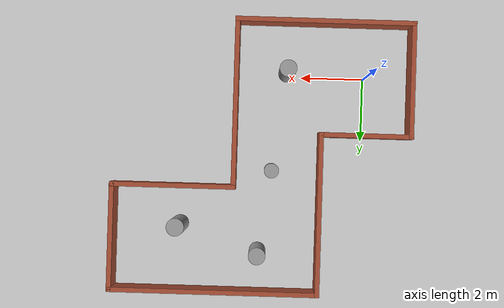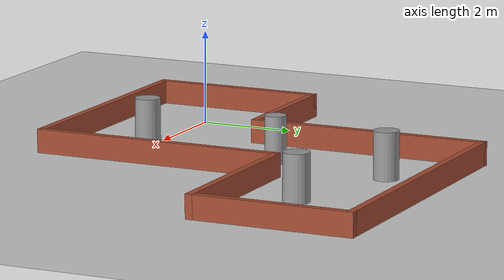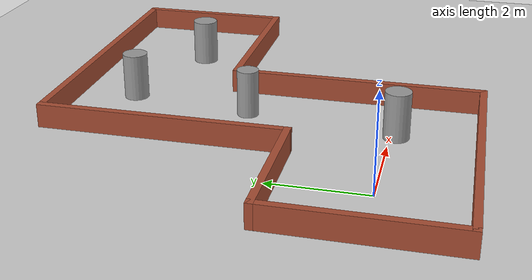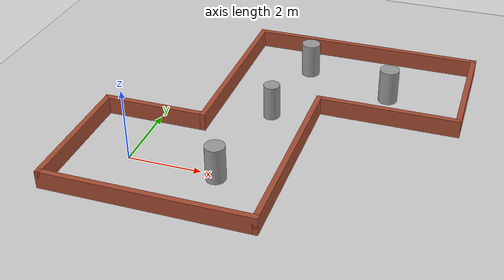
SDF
<sdf version="1.7">
 <world name="default">
  <light name="sun" type="directional">
   <pose>0 0 10 0 -0 0</pose>
   <diffuse>0.8 0.8 0.8 1</diffuse>
   <specular>0.2 0.2 0.2 1</specular>
   <attenuation>
    <range>1000</range>
    <constant>0.9</constant>
    <linear>0.01</linear>
    <quadratic>0.001</quadratic>
   </attenuation>
   <direction>-0.5 0.1 -0.9</direction>
   <spot><inner_angle>0</inner_angle><outer_angle>0</outer_angle><falloff>0</falloff></spot>
  </light>
  <model name="ground_plane">
   <static>1</static>
   <link name="link">
    <collision name="collision">
     <geometry><plane><normal>0 0 1</normal><size>100 100</size></plane></geometry>
     <surface>
      <contact><collide_bitmask>65535</collide_bitmask></contact>
      <friction><ode><mu>100</mu><mu2>50</mu2></ode></friction>
     </surface>
    </collision>
    <visual name="visual">
     <cast_shadows>0</cast_shadows>
     <geometry><plane><normal>0 0 1</normal><size>100 100</size></plane></geometry>
     <material>
      <script><uri>file://media/materials/scripts/gazebo.material</uri><name>Gazebo/Grey</name></script>
     </material>
    </visual>
   </link>
  </model>
  <gravity>0 0 -9.8</gravity>
  <magnetic_field>6e-06 2.3e-05 -4.2e-05</magnetic_field>
  <atmosphere type="adiabatic"/>
  <physics type="ode">
   <max_step_size>0.001</max_step_size>
   <real_time_factor>1</real_time_factor>
   <real_time_update_rate>1000</real_time_update_rate>
  </physics>
  <scene><ambient>0.4 0.4 0.4 1</ambient><background>0.7 0.7 0.7 1</background><shadows>1</shadows></scene>
  <spherical_coordinates>
   <surface_model>EARTH_WGS84</surface_model>
   <latitude_deg>0</latitude_deg>
   <longitude_deg>0</longitude_deg>
   <elevation>0</elevation>
   <heading_deg>0</heading_deg>
  </spherical_coordinates>
  <model name="slam_simple">
   <pose>3.20733 2.59271 0 0 -0 0</pose>
   <link name="Wall_10">
    <collision name="Wall_10_Collision">
     <geometry><box><size>3.5 0.15 0.5</size></box></geometry>
     <pose>0 0 0.25 0 -0 0</pose>
    </collision>
    <visual name="Wall_10_Visual">
     <pose>0 0 0.25 0 -0 0</pose>
     <geometry><box><size>3.5 0.15 0.5</size></box></geometry>
     <material>
      <script><uri>file://media/materials/scripts/gazebo.material</uri><name>Gazebo/Bricks</name></script>
      <ambient>1 1 1 1</ambient>
     </material>
     <meta><layer>0</layer></meta>
    </visual>
    <pose>4.725 2.675 0 0 -0 -1.5708</pose>
   </link>
   <link name="Wall_11">
    <collision name="Wall_11_Collision">
     <geometry><box><size>4 0.15 0.5</size></box></geometry>
     <pose>0 0 0.25 0 -0 0</pose>
    </collision>
    <visual name="Wall_11_Visual">
     <pose>0 0 0.25 0 -0 0</pose>
     <geometry><box><size>4 0.15 0.5</size></box></geometry>
     <material>
      <script><uri>file://media/materials/scripts/gazebo.material</uri><name>Gazebo/Bricks</name></script>
      <ambient>1 1 1 1</ambient>
     </material>
     <meta><layer>0</layer></meta>
    </visual>
    <pose>2.8 1 0 0 -0 3.14159</pose>
   </link>
   <link name="Wall_3">
    <collision name="Wall_3_Collision">
     <geometry><box><size>3.75 0.15 0.5</size></box></geometry>
     <pose>0 0 0.25 0 -0 0</pose>
    </collision>
    <visual name="Wall_3_Visual">
     <pose>0 0 0.25 0 -0 0</pose>
     <geometry><box><size>3.75 0.15 0.5</size></box></geometry>
     <material>
      <script><uri>file://media/materials/scripts/gazebo.material</uri><name>Gazebo/Bricks</name></script>
      <ambient>1 1 1 1</ambient>
     </material>
     <meta><layer>0</layer></meta>
    </visual>
    <pose>-4.725 -2.55 0 0 -0 -1.5708</pose>
   </link>
   <link name="Wall_4">
    <collision name="Wall_4_Collision">
     <geometry><box><size>5.75 0.15 0.5</size></box></geometry>
     <pose>0 0 0.25 0 -0 0</pose>
    </collision>
    <visual name="Wall_4_Visual">
     <pose>0 0 0.25 0 -0 0</pose>
     <geometry><box><size>5.75 0.15 0.5</size></box></geometry>
     <material>
      <script><uri>file://media/materials/scripts/gazebo.material</uri><name>Gazebo/Bricks</name></script>
      <ambient>1 1 1 1</ambient>
     </material>
     <meta><layer>0</layer></meta>
    </visual>
    <pose>-1.925 -4.35 0 0 -0 0</pose>
   </link>
   <link name="Wall_5">
    <collision name="Wall_5_Collision">
     <geometry><box><size>5.5 0.15 0.5</size></box></geometry>
     <pose>0 0 0.25 0 -0 0</pose>
    </collision>
    <visual name="Wall_5_Visual">
     <pose>0 0 0.25 0 -0 0</pose>
     <geometry><box><size>5.5 0.15 0.5</size></box></geometry>
     <material>
      <script><uri>file://media/materials/scripts/gazebo.material</uri><name>Gazebo/Bricks</name></script>
      <ambient>1 1 1 1</ambient>
     </material>
     <meta><layer>0</layer></meta>
    </visual>
    <pose>0.875 -1.675 0 0 -0 1.5708</pose>
   </link>
   <link name="Wall_7">
    <collision name="Wall_7_Collision">
     <geometry><box><size>3 0.15 0.5</size></box></geometry>
     <pose>0 0 0.25 0 -0 0</pose>
    </collision>
    <visual name="Wall_7_Visual">
     <pose>0 0 0.25 0 -0 0</pose>
     <geometry><box><size>3 0.15 0.5</size></box></geometry>
     <material>
      <script><uri>file://media/materials/scripts/gazebo.material</uri><name>Gazebo/Bricks</name></script>
      <ambient>1 1 1 1</ambient>
     </material>
     <meta><layer>0</layer></meta>
    </visual>
    <pose>-3.3 -0.75 0 0 -0 0</pose>
   </link>
   <link name="Wall_8">
    <collision name="Wall_8_Collision">
     <geometry><box><size>5.25 0.15 0.5</size></box></geometry>
     <pose>0 0 0.25 0 -0 0</pose>
    </collision>
    <visual name="Wall_8_Visual">
     <pose>0 0 0.25 0 -0 0</pose>
     <geometry><box><size>5.25 0.15 0.5</size></box></geometry>
     <material>
      <script><uri>file://media/materials/scripts/gazebo.material</uri><name>Gazebo/Bricks</name></script>
      <ambient>1 1 1 1</ambient>
     </material>
     <meta><layer>0</layer></meta>
    </visual>
    <pose>-1.875 1.8 0 0 -0 1.5708</pose>
   </link>
   <link name="Wall_9">
    <collision name="Wall_9_Collision">
     <geometry><box><size>6.75 0.15 0.5</size></box></geometry>
     <pose>0 0 0.25 0 -0 0</pose>
    </collision>
    <visual name="Wall_9_Visual">
     <pose>0 0 0.25 0 -0 0</pose>
     <geometry><box><size>6.75 0.15 0.5</size></box></geometry>
     <material>
      <script><uri>file://media/materials/scripts/gazebo.material</uri><name>Gazebo/Bricks</name></script>
      <ambient>1 1 1 1</ambient>
     </material>
     <meta><layer>0</layer></meta>
    </visual>
    <pose>1.425 4.35 0 0 -0 0</pose>
   </link>
   <static>1</static>
  </model>
  <model name="unit_cylinder">
   <pose>2.46456 -0.123679 0.499991 0 -0 0</pose>
   <link name="link">
    <inertial>
     <mass>1</mass>
     <inertia><ixx>0.145833</ixx><ixy>0</ixy><ixz>0</ixz><iyy>0.145833</iyy><iyz>0</iyz><izz>0.125</izz></inertia>
    </inertial>
    <collision name="collision">
     <geometry><cylinder><radius>0.268288</radius><length>1</length></cylinder></geometry>
    </collision>
    <visual name="visual">
     <geometry><cylinder><radius>0.268288</radius><length>1</length></cylinder></geometry>
     <material>
      <script><name>Gazebo/Grey</name><uri>file://media/materials/scripts/gazebo.material</uri></script>
     </material>
    </visual>
   </link>
  </model>
  <model name="unit_cylinder_0">
   <pose>2.89074 3.02429 0.499991 -1e-06 -0 -1e-06</pose>
   <link name="link">
    <inertial>
     <mass>1</mass>
     <inertia><ixx>0.145833</ixx><ixy>0</ixy><ixz>0</ixz><iyy>0.145833</iyy><iyz>0</iyz><izz>0.125</izz></inertia>
    </inertial>
    <collision name="collision">
     <geometry><cylinder><radius>0.226249</radius><length>1</length></cylinder></geometry>
    </collision>
    <visual name="visual">
     <geometry><cylinder><radius>0.226249</radius><length>1</length></cylinder></geometry>
     <material>
      <script><name>Gazebo/Grey</name><uri>file://media/materials/scripts/gazebo.material</uri></script>
     </material>
    </visual>
   </link>
  </model>
  <model name="unit_cylinder_1">
   <pose>3.26579 5.64912 0.499994 1e-06 -0 0</pose>
   <link name="link">
    <inertial>
     <mass>1</mass>
     <inertia><ixx>0.145833</ixx><ixy>0</ixy><ixz>0</ixz><iyy>0.145833</iyy><iyz>0</iyz><izz>0.125</izz></inertia>
    </inertial>
    <collision name="collision">
     <geometry><cylinder><radius>0.265038</radius><length>1</length></cylinder></geometry>
    </collision>
    <visual name="visual">
     <geometry><cylinder><radius>0.265038</radius><length>1</length></cylinder></geometry>
     <material>
      <script><name>Gazebo/Grey</name><uri>file://media/materials/scripts/gazebo.material</uri></script>
     </material>
    </visual>
   </link>
  </model>
  <model name="unit_cylinder_2">
   <pose>5.79236 4.83657 0.499994 1e-06 -0 0</pose>
   <link name="link">
    <inertial>
     <mass>1</mass>
     <inertia><ixx>0.145833</ixx><ixy>0</ixy><ixz>0</ixz><iyy>0.145833</iyy><iyz>0</iyz><izz>0.125</izz></inertia>
    </inertial>
    <collision name="collision">
     <geometry><cylinder><radius>0.276036</radius><length>1</length></cylinder></geometry>
    </collision>
    <visual name="visual">
     <geometry><cylinder><radius>0.276036</radius><length>1</length></cylinder></geometry>
     <material>
      <script><name>Gazebo/Grey</name><uri>file://media/materials/scripts/gazebo.material</uri></script>
     </material>
    </visual>
   </link>
  </model>
 </world>
</sdf>
